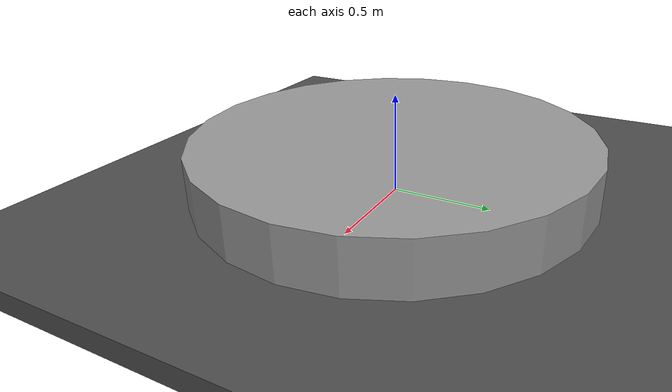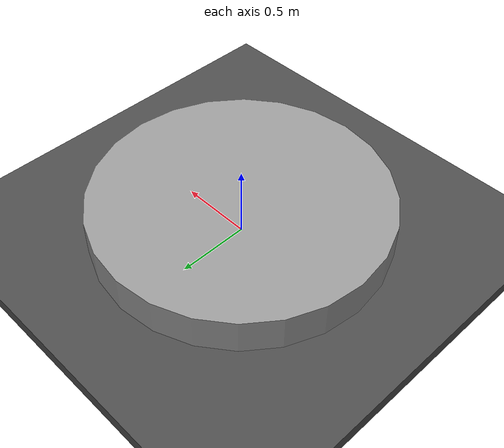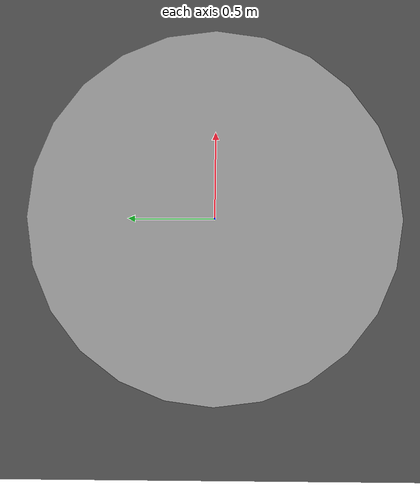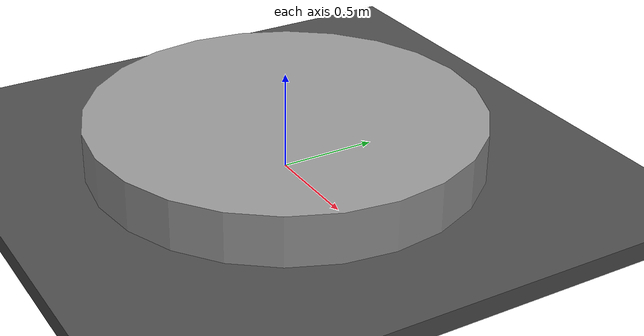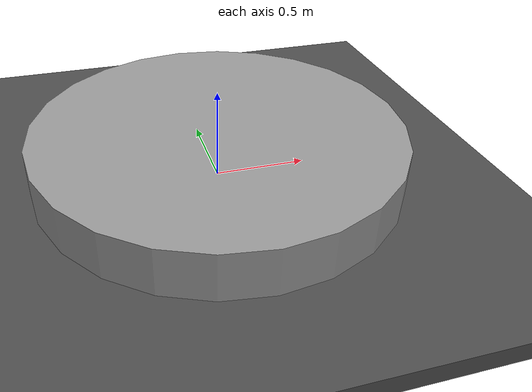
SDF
<sdf version='1.7'>
  <world name='default'>
    <light name='sun' type='directional'>
      <cast_shadows>1</cast_shadows>
      <pose>0 0 10 0 -0 0</pose>
      <diffuse>0.8 0.8 0.8 1</diffuse>
      <specular>0.2 0.2 0.2 1</specular>
      <attenuation>
        <range>1000</range>
        <constant>0.9</constant>
        <linear>0.01</linear>
        <quadratic>0.001</quadratic>
      </attenuation>
      <direction>-0.5 0.1 -0.9</direction>
      <spot>
        <inner_angle>0</inner_angle>
        <outer_angle>0</outer_angle>
        <falloff>0</falloff>
      </spot>
    </light>

    <model name='ground_plane'>
      <static>1</static>
      <link name='link'>
        <collision name='collision'>
          <geometry>
            <plane>
              <normal>0 0 1</normal>
              <size>100 100</size>
            </plane>
          </geometry>
          <surface>
            <contact>
              <collide_bitmask>65535</collide_bitmask>
              <ode/>
            </contact>
            <friction>
              <ode>
                <mu>100</mu>
                <mu2>50</mu2>
              </ode>
              <torsional>
                <ode/>
              </torsional>
            </friction>
            <bounce/>
          </surface>
          <max_contacts>10</max_contacts>
        </collision>
        <visual name='visual'>
          <cast_shadows>0</cast_shadows>
          <geometry>
            <plane>
              <normal>0 0 1</normal>
              <size>100 100</size>
            </plane>
          </geometry>
          <material>
            <script>
              <uri>file://media/materials/scripts/gazebo.material</uri>
              <name>Gazebo/Grey</name>
            </script>
          </material>
        </visual>
        <self_collide>0</self_collide>
        <enable_wind>0</enable_wind>
        <kinematic>0</kinematic>
      </link>
    </model>

    <model name='asphalt_plane'>
      <static>1</static>
      <link name='link'>
        <collision name='collision'>
          <geometry>
            <box>
              <size>100 100 0.1</size>
            </box>
          </geometry>
          <max_contacts>10</max_contacts>
          <surface>
            <contact>
              <ode/>
            </contact>
            <bounce/>
            <friction>
              <torsional>
                <ode/>
              </torsional>
              <ode/>
            </friction>
          </surface>
        </collision>
        <visual name='visual'>
          <cast_shadows>0</cast_shadows>
          <geometry>
            <box>
              <size>100 100 0.1</size>
            </box>
          </geometry>
          <material>
            <script>
              <uri>model://asphalt_plane/materials/scripts</uri>
              <uri>model://asphalt_plane/materials/textures</uri>
              <name>vrc/asphalt</name>
            </script>
          </material>
        </visual>
        <self_collide>0</self_collide>
        <enable_wind>0</enable_wind>
        <kinematic>0</kinematic>
      </link>
    </model>

    <physics name='default_physics' default='0' type='ode'>
      <ode>
        <solver>
          <type>quick</type>
          <iters>10</iters>
          <sor>1.3</sor>
          <use_dynamic_moi_rescaling>0</use_dynamic_moi_rescaling>
        </solver>
        <constraints>
          <cfm>0</cfm>
          <erp>0.2</erp>
          <contact_max_correcting_vel>100</contact_max_correcting_vel>
          <contact_surface_layer>0.001</contact_surface_layer>
        </constraints>
      </ode>
      <max_step_size>0.004</max_step_size>
      <real_time_factor>1</real_time_factor>
      <real_time_update_rate>250</real_time_update_rate>
    </physics>

    <plugin name='wind_plugin' filename='libgazebo_wind_plugin.so'>
      <frameId>base_link</frameId>
      <robotNamespace/>
      <windVelocityMean>1.55</windVelocityMean>
      <windVelocityMax>3.0</windVelocityMax>
      <windVelocityVariance>1.0</windVelocityVariance>
      <windDirectionMean>0 1 0</windDirectionMean>
      <windDirectionVariance>0.5</windDirectionVariance>
      <windGustStart>0</windGustStart>
      <windGustDuration>0</windGustDuration>
      <windGustVelocityMean>0</windGustVelocityMean>
    </plugin>

    <gravity>0 0 -9.8066</gravity>
    <magnetic_field>6e-06 2.3e-05 -4.2e-05</magnetic_field>
    <atmosphere type='adiabatic'/>

    <scene>
      <ambient>0.4 0.4 0.4 1</ambient>
      <background>0.7 0.7 0.7 1</background>
      <shadows>1</shadows>
    </scene>

    <wind/>
    <spherical_coordinates>
      <surface_model>EARTH_WGS84</surface_model>
      <latitude_deg>0</latitude_deg>
      <longitude_deg>0</longitude_deg>
      <elevation>0</elevation>
      <heading_deg>0</heading_deg>
    </spherical_coordinates>

    <model name='unit_cylinder'>
      <pose>0 0 0.178238 0 0 0</pose>
      <link name='link'>
        <inertial>
          <mass>1</mass>
          <inertia>
            <ixx>0.145833</ixx>
            <ixy>0</ixy>
            <ixz>0</ixz>
            <iyy>0.145833</iyy>
            <iyz>0</iyz>
            <izz>0.125</izz>
          </inertia>
          <pose>0 0 0 0 -0 0</pose>
        </inertial>
        <self_collide>0</self_collide>
        <enable_wind>0</enable_wind>
        <kinematic>0</kinematic>
        <pose>0 0 0 0 -0 0</pose>
        <gravity>1</gravity>
        <visual name='visual'>
          <geometry>
            <cylinder>
              <radius>01.0</radius>
              <length>0.256476</length>
            </cylinder>
          </geometry>
          <material>
            <script>
              <name>Gazebo/Grey</name>
              <uri>file://media/materials/scripts/gazebo.material</uri>
            </script>
            <shader type='pixel'>
              <normal_map>__default__</normal_map>
            </shader>
            <ambient>1 1 1 0.1</ambient>
            <diffuse>1 1 1 1</diffuse>
            <specular>0 0 0.5 1</specular>
            <emissive>0 0 0 1</emissive>
          </material>
          <pose>0 0 0 0 -0 0</pose>
          <transparency>0</transparency>
          <cast_shadows>1</cast_shadows>
        </visual>
        <collision name='collision'>
          <laser_retro>0</laser_retro>
          <max_contacts>10</max_contacts>
          <pose>0 0 0 0 -0 0</pose>
          <geometry>
            <cylinder>
              <radius>01.0</radius>
              <length>0.256476</length>
            </cylinder>
          </geometry>
          <surface>
            <friction>
              <ode>
                <mu>1</mu>
                <mu2>1</mu2>
                <fdir1>0 0 0</fdir1>
                <slip1>0</slip1>
                <slip2>0</slip2>
              </ode>
              <torsional>
                <coefficient>1</coefficient>
                <patch_radius>0</patch_radius>
                <surface_radius>0</surface_radius>
                <use_patch_radius>1</use_patch_radius>
                <ode>
                  <slip>0</slip>
                </ode>
              </torsional>
            </friction>
            <bounce>
              <restitution_coefficient>0</restitution_coefficient>
              <threshold>1e+06</threshold>
            </bounce>
            <contact>
              <collide_without_contact>0</collide_without_contact>
              <collide_without_contact_bitmask>1</collide_without_contact_bitmask>
              <collide_bitmask>1</collide_bitmask>
              <ode>
                <soft_cfm>0</soft_cfm>
                <soft_erp>0.2</soft_erp>
                <kp>1e+13</kp>
                <kd>1</kd>
                <max_vel>0.01</max_vel>
                <min_depth>0</min_depth>
              </ode>
              <bullet>
                <split_impulse>1</split_impulse>
                <split_impulse_penetration_threshold>-0.01</split_impulse_penetration_threshold>
                <soft_cfm>0</soft_cfm>
                <soft_erp>0.2</soft_erp>
                <kp>1e+13</kp>
                <kd>1</kd>
              </bullet>
            </contact>
          </surface>
        </collision>
      </link>
      <static>1</static>
      <allow_auto_disable>1</allow_auto_disable>
    </model>

    <gui fullscreen='0'>
      <camera name='user_camera'>
        <pose>2.5405 -2.30952 1.35322 -0 0.199643 2.30819</pose>
        <view_controller>orbit</view_controller>
        <projection_type>perspective</projection_type>
      </camera>
    </gui>
  </world>
</sdf>
